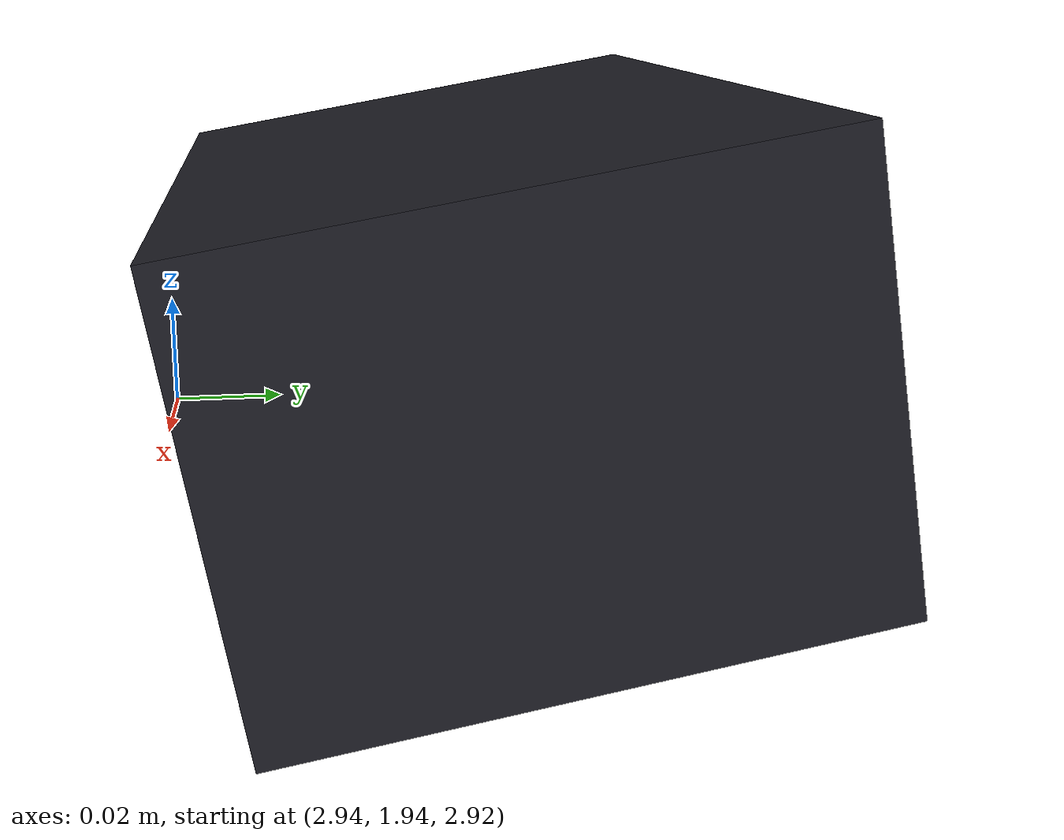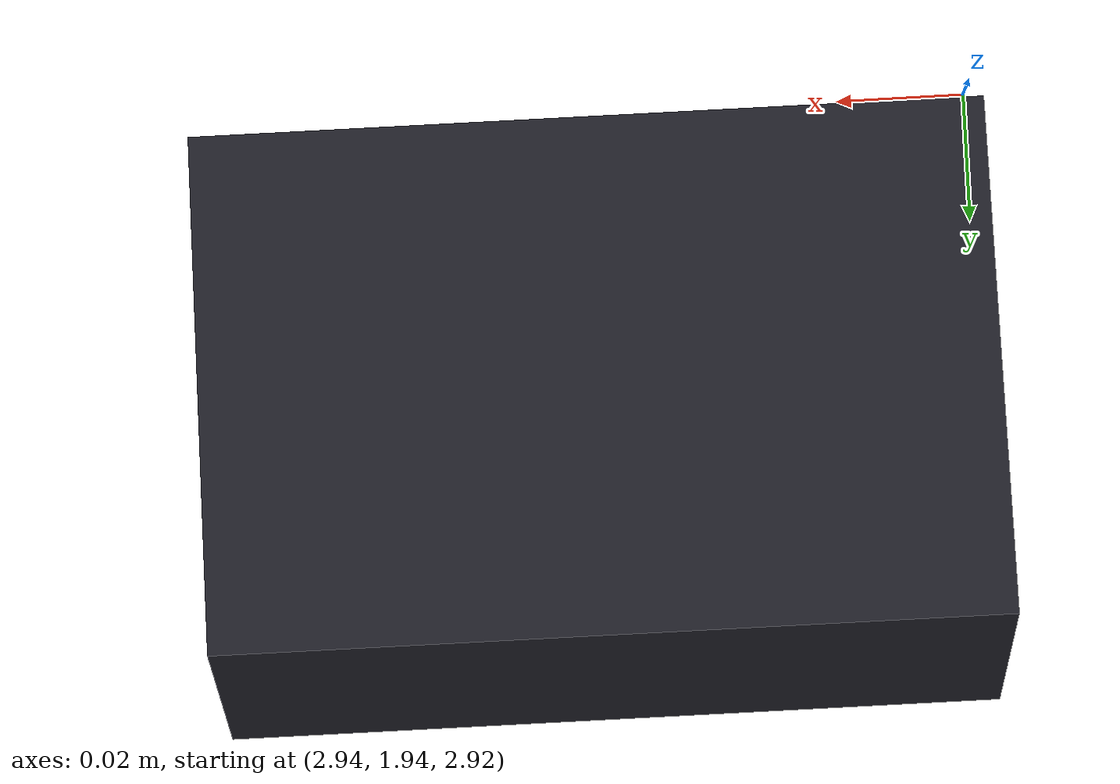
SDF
<sdf version="1.9">
 <world name="mocap_arena">
  <model name="camera_1">
   <static>true</static>
   <pose>3.0 2.0 2.9 0.17453292519943295 -3.1898652743636566e-17 -2.7907704968183198e-18</pose>
   <link name="camera_link">
    <visual name="housing_visual">
     <pose>0 0 0.05 0 0 0</pose>
     <geometry><box><size>0.12 0.08 0.06</size></box></geometry>
     <material>
      <ambient>0.12 0.12 0.15 1</ambient>
      <diffuse>0.12 0.12 0.15 1</diffuse>
      <pbr><metal><metalness>0.0</metalness><roughness>0.75</roughness></metal></pbr>
     </material>
    </visual>
    <sensor name="camera_1" type="wideanglecamera">
     <pose>0 0 0 0 1.5707963267948966 1.5707963267948966</pose>
     <always_on>true</always_on>
     <update_rate>80</update_rate>
     <topic>/cameras/camera_1/image</topic>
     <visualize>true</visualize>
     <camera>
      <horizontal_fov>2.23271380848488</horizontal_fov>
      <camera_info_topic>/cameras/camera_1/camera_info</camera_info_topic>
      <image><width>1640</width><height>1232</height><format>R8G8B8</format></image>
      <clip><near>0.05</near><far>20</far></clip>
      <lens>
       <type>equidistant</type>
       <scale_to_hfov>true</scale_to_hfov>
       <cutoff_angle>1.3962634015954636</cutoff_angle>
       <env_texture_size>2048</env_texture_size>
       <intrinsics><fx>734.53211682016</fx><fy>734.53211682016</fy><cx>820.0</cx><cy>616.0</cy><s>0</s></intrinsics>
      </lens>
     </camera>
    </sensor>
   </link>
  </model>
 </world>
</sdf>
